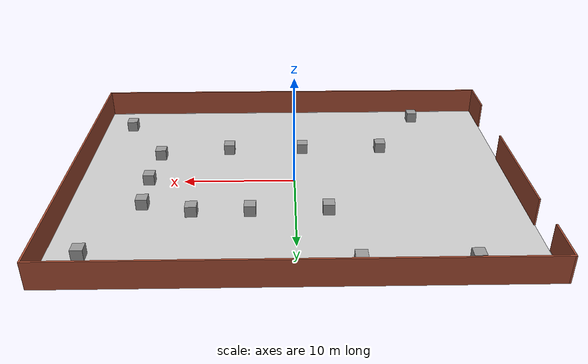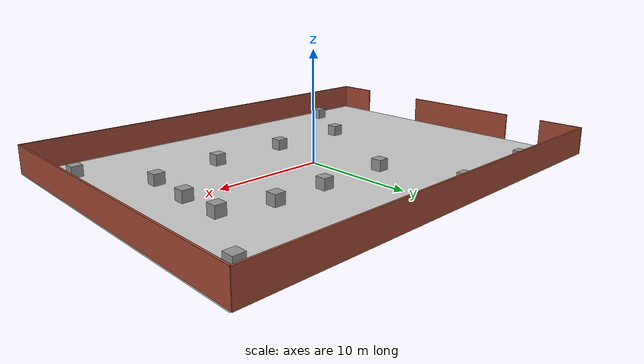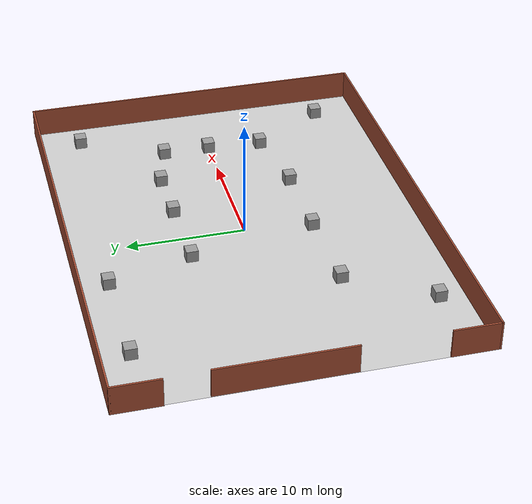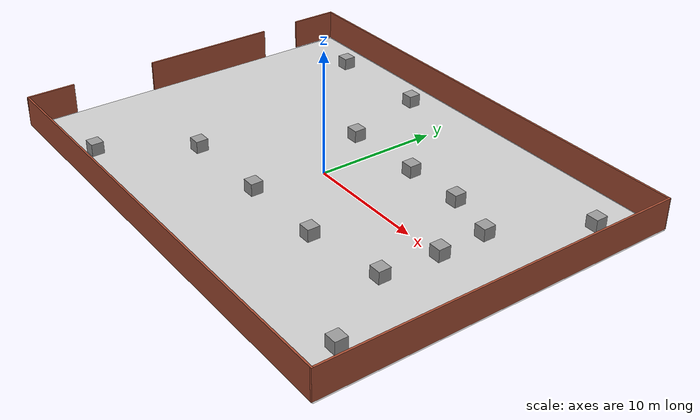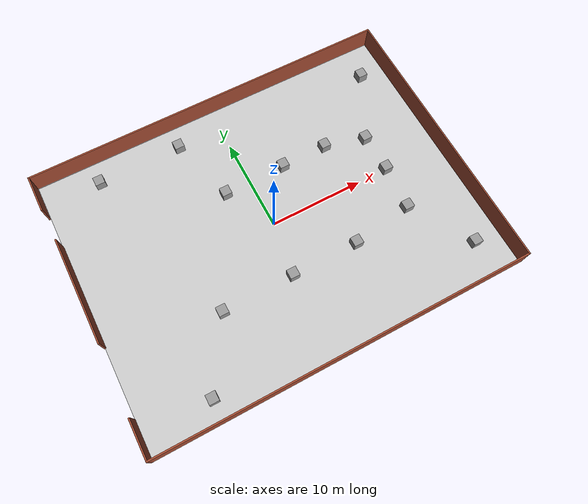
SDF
<sdf version="1.6">
 <world name="default">
  <light name="sun" type="directional">
   <pose>0 0 10 0 -0 0</pose>
   <diffuse>0.8 0.8 0.8 1</diffuse>
   <specular>0.1 0.1 0.1 1</specular>
   <attenuation>
    <range>1000</range>
    <constant>0.9</constant>
    <linear>0.01</linear>
    <quadratic>0.001</quadratic>
   </attenuation>
   <direction>-0.5 0.5 -1</direction>
  </light>
  <model name="cmu_ground_plane">
   <static>1</static>
   <link name="link">
    <collision name="collision">
     <geometry><plane><normal>0 0 1</normal><size>39.44 29.55</size></plane></geometry>
     <surface><friction><ode><mu>100</mu><mu2>50</mu2></ode></friction></surface>
    </collision>
    <visual name="visual">
     <cast_shadows>0</cast_shadows>
     <geometry><plane><normal>0 0 1</normal><size>39.44 29.55</size></plane></geometry>
     <material>
      <script>
       <uri>model://cmu_ground_plane/materials/scripts</uri>
       <uri>model://cmu_ground_plane/materials/textures</uri>
       <name>CMUGroundPlane/Image</name>
      </script>
     </material>
    </visual>
   </link>
  </model>
  <gravity>0 0 -9.8</gravity>
  <magnetic_field>6e-06 2.3e-05 -4.2e-05</magnetic_field>
  <atmosphere type="adiabatic"/>
  <physics name="default_physics" default="0" type="ode">
   <max_step_size>0.001</max_step_size>
   <real_time_factor>1</real_time_factor>
   <real_time_update_rate>1000</real_time_update_rate>
  </physics>
  <scene><ambient>0.4 0.4 0.4 1</ambient><background>0.7 0.7 0.7 1</background><shadows>1</shadows></scene>
  <spherical_coordinates>
   <surface_model>EARTH_WGS84</surface_model>
   <latitude_deg>0</latitude_deg>
   <longitude_deg>0</longitude_deg>
   <elevation>0</elevation>
   <heading_deg>0</heading_deg>
  </spherical_coordinates>
  <model name="garage">
   <pose>-0.1012 0.05082 0 0 -0 0</pose>
   <link name="Wall_10">
    <collision name="Wall_10_Collision">
     <geometry><box><size>11.25 0.15 2.5</size></box></geometry>
     <pose>0 0 1.25 0 -0 0</pose>
    </collision>
    <visual name="Wall_10_Visual">
     <pose>0 0 1.25 0 -0 0</pose>
     <geometry><box><size>11.25 0.15 2.5</size></box></geometry>
     <material>
      <script><uri>file://media/materials/scripts/gazebo.material</uri><name>Gazebo/Bricks</name></script>
      <ambient>1 1 1 1</ambient>
     </material>
    </visual>
    <pose>-19.5828 1.79493 0 0 0 -1.5708</pose>
   </link>
   <link name="Wall_2">
    <collision name="Wall_2_Collision">
     <geometry><box><size>4 0.15 2.5</size></box></geometry>
     <pose>0 0 1.25 0 -0 0</pose>
    </collision>
    <visual name="Wall_2_Visual">
     <pose>0 0 1.25 0 -0 0</pose>
     <geometry><box><size>4 0.15 2.5</size></box></geometry>
     <material>
      <script><uri>file://media/materials/scripts/gazebo.material</uri><name>Gazebo/Bricks</name></script>
      <ambient>1 1 1 1</ambient>
     </material>
    </visual>
    <pose>-19.6442 -12.8901 0 0 0 -1.5708</pose>
   </link>
   <link name="Wall_3">
    <collision name="Wall_3_Collision">
     <geometry><box><size>39.5 0.15 2.5</size></box></geometry>
     <pose>0 0 1.25 0 -0 0</pose>
    </collision>
    <visual name="Wall_3_Visual">
     <pose>0 0 1.25 0 -0 0</pose>
     <geometry><box><size>39.5 0.15 2.5</size></box></geometry>
     <material>
      <script><uri>file://media/materials/scripts/gazebo.material</uri><name>Gazebo/Bricks</name></script>
      <ambient>1 1 1 1</ambient>
     </material>
    </visual>
    <pose>0.030764 -14.8151 0 0 -0 0</pose>
   </link>
   <link name="Wall_4">
    <collision name="Wall_4_Collision">
     <geometry><box><size>29.75 0.15 2.5</size></box></geometry>
     <pose>0 0 1.25 0 -0 0</pose>
    </collision>
    <visual name="Wall_4_Visual">
     <pose>0 0 1.25 0 -0 0</pose>
     <geometry><box><size>29.75 0.15 2.5</size></box></geometry>
     <material>
      <script><uri>file://media/materials/scripts/gazebo.material</uri><name>Gazebo/Bricks</name></script>
      <ambient>1 1 1 1</ambient>
     </material>
    </visual>
    <pose>19.7058 -0.015118 0 0 -0 1.5708</pose>
   </link>
   <link name="Wall_5">
    <collision name="Wall_5_Collision">
     <geometry><box><size>39.5615 0.15 2.5</size></box></geometry>
     <pose>0 0 1.25 0 -0 0</pose>
    </collision>
    <visual name="Wall_5_Visual">
     <pose>0 0 1.25 0 -0 0</pose>
     <geometry><box><size>39.5615 0.15 2.5</size></box></geometry>
     <material>
      <script><uri>file://media/materials/scripts/gazebo.material</uri><name>Gazebo/Bricks</name></script>
      <ambient>1 1 1 1</ambient>
     </material>
    </visual>
    <pose>0 14.8 0 0 -0 3.14083</pose>
   </link>
   <link name="Wall_7">
    <collision name="Wall_7_Collision">
     <geometry><box><size>4 0.15 2.5</size></box></geometry>
     <pose>0 0 1.25 0 -0 0</pose>
    </collision>
    <visual name="Wall_7_Visual">
     <pose>0 0 1.25 0 -0 0</pose>
     <geometry><box><size>4 0.15 2.5</size></box></geometry>
     <material>
      <script><uri>file://media/materials/scripts/gazebo.material</uri><name>Gazebo/Bricks</name></script>
      <ambient>1 1 1 1</ambient>
     </material>
    </visual>
    <pose>-19.7058 12.8901 0 0 0 -1.5708</pose>
   </link>
   <static>1</static>
  </model>
  <model name="unit_box_0">
   <pose>-12.765 -12.4906 0.499995 -1e-05 0 0</pose>
   <link name="link">
    <inertial>
     <mass>1</mass>
     <inertia>
      <ixx>0.166667</ixx>
      <ixy>0</ixy>
      <ixz>0</ixz>
      <iyy>0.166667</iyy>
      <iyz>0</iyz>
      <izz>0.166667</izz>
     </inertia>
    </inertial>
    <collision name="collision"><geometry><box><size>1 1 1</size></box></geometry></collision>
    <visual name="visual">
     <geometry><box><size>1 1 1</size></box></geometry>
     <material>
      <script><name>Gazebo/Grey</name><uri>file://media/materials/scripts/gazebo.material</uri></script>
     </material>
    </visual>
   </link>
  </model>
  <model name="unit_box_1">
   <pose>-8.50706 -5.74826 0.499995 -1e-05 0 0</pose>
   <link name="link">
    <inertial>
     <mass>1</mass>
     <inertia>
      <ixx>0.166667</ixx>
      <ixy>0</ixy>
      <ixz>0</ixz>
      <iyy>0.166667</iyy>
      <iyz>0</iyz>
      <izz>0.166667</izz>
     </inertia>
    </inertial>
    <collision name="collision"><geometry><box><size>1 1 1</size></box></geometry></collision>
    <visual name="visual">
     <geometry><box><size>1 1 1</size></box></geometry>
     <material>
      <script><name>Gazebo/Grey</name><uri>file://media/materials/scripts/gazebo.material</uri></script>
     </material>
    </visual>
   </link>
  </model>
  <model name="unit_box_2">
   <pose>-0.863329 -5.62865 0.499995 0 1e-05 0</pose>
   <link name="link">
    <inertial>
     <mass>1</mass>
     <inertia>
      <ixx>0.166667</ixx>
      <ixy>0</ixy>
      <ixz>0</ixz>
      <iyy>0.166667</iyy>
      <iyz>0</iyz>
      <izz>0.166667</izz>
     </inertia>
    </inertial>
    <collision name="collision"><geometry><box><size>1 1 1</size></box></geometry></collision>
    <visual name="visual">
     <geometry><box><size>1 1 1</size></box></geometry>
     <material>
      <script><name>Gazebo/Grey</name><uri>file://media/materials/scripts/gazebo.material</uri></script>
     </material>
    </visual>
   </link>
  </model>
  <model name="unit_box_3">
   <pose>6.25963 -5.63105 0.499995 -1e-05 0 0</pose>
   <link name="link">
    <inertial>
     <mass>1</mass>
     <inertia>
      <ixx>0.166667</ixx>
      <ixy>0</ixy>
      <ixz>0</ixz>
      <iyy>0.166667</iyy>
      <iyz>0</iyz>
      <izz>0.166667</izz>
     </inertia>
    </inertial>
    <collision name="collision"><geometry><box><size>1 1 1</size></box></geometry></collision>
    <visual name="visual">
     <geometry><box><size>1 1 1</size></box></geometry>
     <material>
      <script><name>Gazebo/Grey</name><uri>file://media/materials/scripts/gazebo.material</uri></script>
     </material>
    </visual>
   </link>
  </model>
  <model name="unit_box_4">
   <pose>12.7897 -4.6473 0.499995 0 1e-05 0</pose>
   <link name="link">
    <inertial>
     <mass>1</mass>
     <inertia>
      <ixx>0.166667</ixx>
      <ixy>0</ixy>
      <ixz>0</ixz>
      <iyy>0.166667</iyy>
      <iyz>0</iyz>
      <izz>0.166667</izz>
     </inertia>
    </inertial>
    <collision name="collision"><geometry><box><size>1 1 1</size></box></geometry></collision>
    <visual name="visual">
     <geometry><box><size>1 1 1</size></box></geometry>
     <material>
      <script><name>Gazebo/Grey</name><uri>file://media/materials/scripts/gazebo.material</uri></script>
     </material>
    </visual>
   </link>
  </model>
  <model name="unit_box_5">
   <pose>16.7087 -10.9617 0.499995 -1e-05 0 0</pose>
   <link name="link">
    <inertial>
     <mass>1</mass>
     <inertia>
      <ixx>0.166667</ixx>
      <ixy>0</ixy>
      <ixz>0</ixz>
      <iyy>0.166667</iyy>
      <iyz>0</iyz>
      <izz>0.166667</izz>
     </inertia>
    </inertial>
    <collision name="collision"><geometry><box><size>1 1 1</size></box></geometry></collision>
    <visual name="visual">
     <geometry><box><size>1 1 1</size></box></geometry>
     <material>
      <script><name>Gazebo/Grey</name><uri>file://media/materials/scripts/gazebo.material</uri></script>
     </material>
    </visual>
   </link>
  </model>
  <model name="unit_box_6">
   <pose>13.1699 0.058132 0.499995 -1e-05 0 0</pose>
   <link name="link">
    <inertial>
     <mass>1</mass>
     <inertia>
      <ixx>0.166667</ixx>
      <ixy>0</ixy>
      <ixz>0</ixz>
      <iyy>0.166667</iyy>
      <iyz>0</iyz>
      <izz>0.166667</izz>
     </inertia>
    </inertial>
    <collision name="collision"><geometry><box><size>1 1 1</size></box></geometry></collision>
    <visual name="visual">
     <geometry><box><size>1 1 1</size></box></geometry>
     <material>
      <script><name>Gazebo/Grey</name><uri>file://media/materials/scripts/gazebo.material</uri></script>
     </material>
    </visual>
   </link>
  </model>
  <model name="unit_box_7">
   <pose>13.1081 4.11625 0.499995 0 1e-05 0</pose>
   <link name="link">
    <inertial>
     <mass>1</mass>
     <inertia>
      <ixx>0.166667</ixx>
      <ixy>0</ixy>
      <ixz>0</ixz>
      <iyy>0.166667</iyy>
      <iyz>0</iyz>
      <izz>0.166667</izz>
     </inertia>
    </inertial>
    <collision name="collision"><geometry><box><size>1 1 1</size></box></geometry></collision>
    <visual name="visual">
     <geometry><box><size>1 1 1</size></box></geometry>
     <material>
      <script><name>Gazebo/Grey</name><uri>file://media/materials/scripts/gazebo.material</uri></script>
     </material>
    </visual>
   </link>
  </model>
  <model name="unit_box_8">
   <pose>16.7424 11.1193 0.499995 0 1e-05 0</pose>
   <link name="link">
    <inertial>
     <mass>1</mass>
     <inertia>
      <ixx>0.166667</ixx>
      <ixy>0</ixy>
      <ixz>0</ixz>
      <iyy>0.166667</iyy>
      <iyz>0</iyz>
      <izz>0.166667</izz>
     </inertia>
    </inertial>
    <collision name="collision"><geometry><box><size>1 1 1</size></box></geometry></collision>
    <visual name="visual">
     <geometry><box><size>1 1 1</size></box></geometry>
     <material>
      <script><name>Gazebo/Grey</name><uri>file://media/materials/scripts/gazebo.material</uri></script>
     </material>
    </visual>
   </link>
  </model>
  <model name="unit_box_9">
   <pose>8.79594 5.30535 0.499995 0 1e-05 0</pose>
   <link name="link">
    <inertial>
     <mass>1</mass>
     <inertia>
      <ixx>0.166667</ixx>
      <ixy>0</ixy>
      <ixz>0</ixz>
      <iyy>0.166667</iyy>
      <iyz>0</iyz>
      <izz>0.166667</izz>
     </inertia>
    </inertial>
    <collision name="collision"><geometry><box><size>1 1 1</size></box></geometry></collision>
    <visual name="visual">
     <geometry><box><size>1 1 1</size></box></geometry>
     <material>
      <script><name>Gazebo/Grey</name><uri>file://media/materials/scripts/gazebo.material</uri></script>
     </material>
    </visual>
   </link>
  </model>
  <model name="unit_box_10">
   <pose>3.83654 5.27069 0.499995 -1e-05 0 0</pose>
   <link name="link">
    <inertial>
     <mass>1</mass>
     <inertia>
      <ixx>0.166667</ixx>
      <ixy>0</ixy>
      <ixz>0</ixz>
      <iyy>0.166667</iyy>
      <iyz>0</iyz>
      <izz>0.166667</izz>
     </inertia>
    </inertial>
    <collision name="collision"><geometry><box><size>1 1 1</size></box></geometry></collision>
    <visual name="visual">
     <geometry><box><size>1 1 1</size></box></geometry>
     <material>
      <script><name>Gazebo/Grey</name><uri>file://media/materials/scripts/gazebo.material</uri></script>
     </material>
    </visual>
   </link>
  </model>
  <model name="unit_box_11">
   <pose>-2.81949 5.17118 0.499995 0 1e-05 0</pose>
   <link name="link">
    <inertial>
     <mass>1</mass>
     <inertia>
      <ixx>0.166667</ixx>
      <ixy>0</ixy>
      <ixz>0</ixz>
      <iyy>0.166667</iyy>
      <iyz>0</iyz>
      <izz>0.166667</izz>
     </inertia>
    </inertial>
    <collision name="collision"><geometry><box><size>1 1 1</size></box></geometry></collision>
    <visual name="visual">
     <geometry><box><size>1 1 1</size></box></geometry>
     <material>
      <script><name>Gazebo/Grey</name><uri>file://media/materials/scripts/gazebo.material</uri></script>
     </material>
    </visual>
   </link>
  </model>
  <model name="unit_box_12">
   <pose>-4.85361 12.3337 0.499995 -1e-05 0 0</pose>
   <link name="link">
    <inertial>
     <mass>1</mass>
     <inertia>
      <ixx>0.166667</ixx>
      <ixy>0</ixy>
      <ixz>0</ixz>
      <iyy>0.166667</iyy>
      <iyz>0</iyz>
      <izz>0.166667</izz>
     </inertia>
    </inertial>
    <collision name="collision"><geometry><box><size>1 1 1</size></box></geometry></collision>
    <visual name="visual">
     <geometry><box><size>1 1 1</size></box></geometry>
     <material>
      <script><name>Gazebo/Grey</name><uri>file://media/materials/scripts/gazebo.material</uri></script>
     </material>
    </visual>
   </link>
  </model>
  <model name="unit_box_13">
   <pose>-13.7696 12.274 0.5 0 -0 0</pose>
   <link name="link">
    <inertial>
     <mass>1</mass>
     <inertia>
      <ixx>0.166667</ixx>
      <ixy>0</ixy>
      <ixz>0</ixz>
      <iyy>0.166667</iyy>
      <iyz>0</iyz>
      <izz>0.166667</izz>
     </inertia>
    </inertial>
    <collision name="collision"><geometry><box><size>1 1 1</size></box></geometry></collision>
    <visual name="visual">
     <geometry><box><size>1 1 1</size></box></geometry>
     <material>
      <script><name>Gazebo/Grey</name><uri>file://media/materials/scripts/gazebo.material</uri></script>
     </material>
    </visual>
   </link>
  </model>
 </world>
</sdf>
